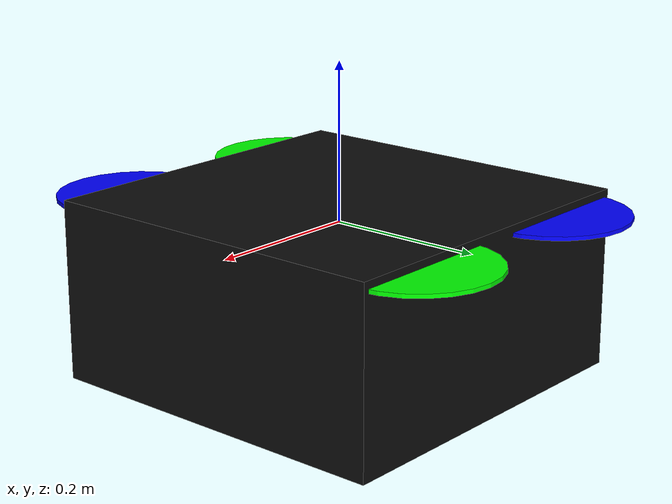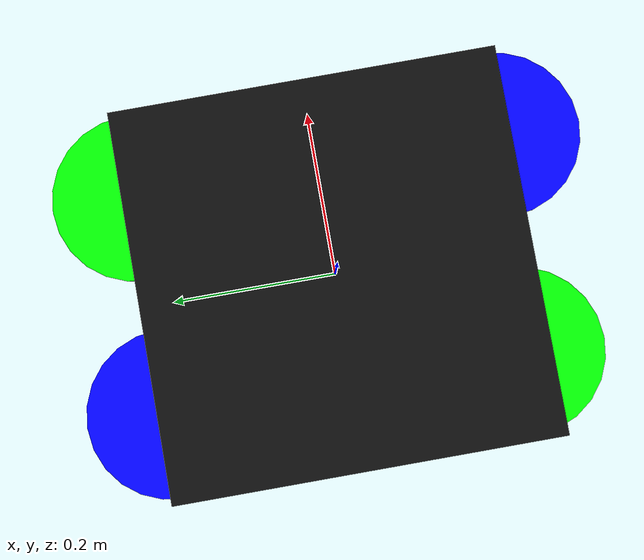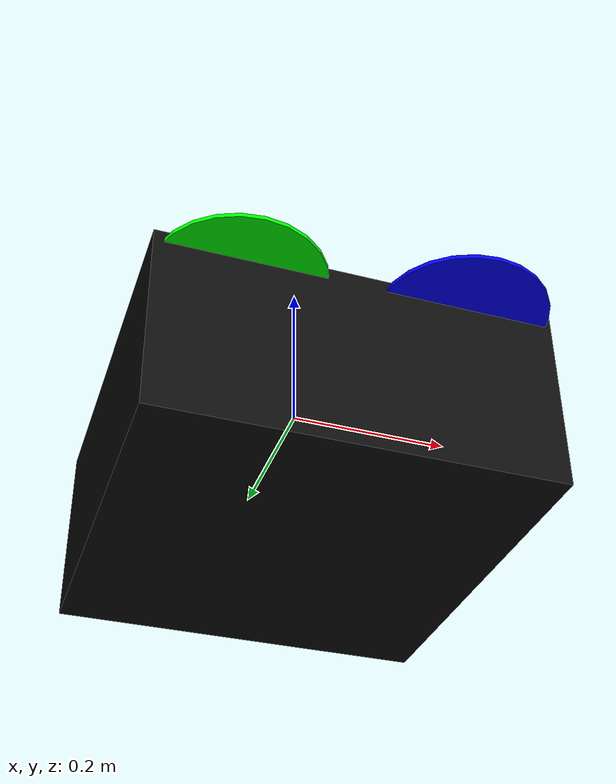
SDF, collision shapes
<?xml version='1.0'?>
<sdf version='1.9'>
  <model name='iris_with_standoffs'>
    <pose>0 0 0 0 0 0</pose>
    <link name='base_link'>
      <velocity_decay>
        <linear>0.0</linear>
        <angular>0.0</angular>
      </velocity_decay>
      <inertial>
        <pose>0 0 0 0 0 0</pose>
        <mass>1.5</mass>
        <inertia>
          <ixx>0.008</ixx>
          <ixy>0</ixy>
          <ixz>0</ixz>
          <iyy>0.015</iyy>
          <iyz>0</iyz>
          <izz>0.017</izz>
        </inertia>
      </inertial>
      <collision name='base_collision'>
        <pose>0 0 -0.08 0 0 0</pose>
        <geometry>
          <box>
            <size>0.47 0.47 0.23</size>
          </box>
        </geometry>
        <surface>
          <contact>
            <ode>
              <max_vel>100.0</max_vel>
              <min_depth>0.001</min_depth>
            </ode>
          </contact>
          <friction>
            <ode>
              <mu>100000.0</mu>
              <mu2>100000.0</mu2>
            </ode>
          </friction>
        </surface>
      </collision>
      <visual name='base_visual'>
        <geometry>
          <mesh>
            <uri>model://iris_with_standoffs/meshes/iris.dae</uri>
          </mesh>
        </geometry>
        <material>
          <ambient>0.05 0.05 0.05</ambient>
          <diffuse>0.05 0.05 0.05</diffuse>
          <specular>1 1 1 1</specular>
          <pbr>
            <metal>
              <metalness>0.5</metalness>
              <roughness>0.5</roughness>
            </metal>
          </pbr>
        </material>
      </visual>

      <visual name='front_left_leg_visual'>
        <pose>0.123 0.22 -0.11 0 0 0</pose>
        <geometry>
          <cylinder>
            <radius>0.005</radius>
            <length>0.17</length>
          </cylinder>
        </geometry>
        <material>
          <ambient>0.05 0.05 0.05</ambient>
          <diffuse>0.05 0.05 0.05</diffuse>
          <specular>0.01 0.01 0.01 1.0</specular>
          <pbr>
            <metal>
              <metalness>0.5</metalness>
              <roughness>0.5</roughness>
            </metal>
          </pbr>
        </material>
      </visual>
      <visual name='front_right_leg_visual'>
        <pose>0.123 -0.22 -0.11 0 0 0</pose>
        <geometry>
          <cylinder>
            <radius>0.005</radius>
            <length>0.17</length>
          </cylinder>
        </geometry>
        <material>
          <ambient>0.05 0.05 0.05</ambient>
          <diffuse>0.05 0.05 0.05</diffuse>
          <specular>0.01 0.01 0.01 1.0</specular>
          <pbr>
            <metal>
              <metalness>0.5</metalness>
              <roughness>0.5</roughness>
            </metal>
          </pbr>
        </material>
      </visual>
      <visual name='rear_left_leg_visual'>
        <pose>-0.140 0.21 -0.11 0 0 0</pose>
        <geometry>
          <cylinder>
            <radius>0.005</radius>
            <length>0.17</length>
          </cylinder>
        </geometry>
        <material>
          <ambient>0.05 0.05 0.05</ambient>
          <diffuse>0.05 0.05 0.05</diffuse>
          <specular>0.01 0.01 0.01 1.0</specular>
          <pbr>
            <metal>
              <metalness>0.5</metalness>
              <roughness>0.5</roughness>
            </metal>
          </pbr>
        </material>
      </visual>
      <visual name='rear_right_leg_visual'>
        <pose>-0.140 -0.21 -0.11 0 0 0</pose>
        <geometry>
          <cylinder>
            <radius>0.005</radius>
            <length>0.17</length>
          </cylinder>
        </geometry>
        <material>
          <ambient>0.05 0.05 0.05</ambient>
          <diffuse>0.05 0.05 0.05</diffuse>
          <specular>0.01 0.01 0.01 1.0</specular>
          <pbr>
            <metal>
              <metalness>0.5</metalness>
              <roughness>0.5</roughness>
            </metal>
          </pbr>
        </material>
	  </visual>
    </link>

    <!-- Mincopter elements -->
    <link name='compass_link'>
      <inertial>
        <pose>0 0 0 0 0 0</pose>
        <mass>0.15</mass>
        <inertia>
          <ixx>0.00001</ixx>
          <ixy>0</ixy>
          <ixz>0</ixz>
          <iyy>0.00002</iyy>
          <iyz>0</iyz>
          <izz>0.00002</izz>
        </inertia>
      </inertial>
      <sensor name="compass_sensor" type="magnetometer">
		  <pose degrees="true">0 0 0 0 0 0</pose>
        <always_on>1</always_on>
		<update_rate>1000.0</update_rate>
      </sensor>
    </link>

    <link name='barometer_link'>
      <inertial>
        <pose>0 0 0 0 0 0</pose>
        <mass>0.15</mass>
        <inertia>
          <ixx>0.00001</ixx>
          <ixy>0</ixy>
          <ixz>0</ixz>
          <iyy>0.00002</iyy>
          <iyz>0</iyz>
          <izz>0.00002</izz>
        </inertia>
      </inertial>
      <sensor name="baro_sensor" type="air_pressure">
        <pose degrees="true">0 0 0 0 0 0</pose>
        <always_on>1</always_on>
        <update_rate>1000.0</update_rate>
      </sensor>
    </link>

    <link name='imu_link'>
      <inertial>
        <pose>0 0 0 0 0 0</pose>
        <mass>0.15</mass>
        <inertia>
          <ixx>0.00001</ixx>
          <ixy>0</ixy>
          <ixz>0</ixz>
          <iyy>0.00002</iyy>
          <iyz>0</iyz>
          <izz>0.00002</izz>
        </inertia>
      </inertial>
	  <sensor name="imu_sensor" type="imu">
		<!-- pose here was formally 0 0 0 180 0 0 -->
        <pose degrees="true">0 0 0 0 0 0</pose>
        <always_on>1</always_on>
		<update_rate>1000.0</update_rate>
		<linear_acceleration>
			<x><noise type="gaussian"></noise></x>
			<y><noise type="gaussian"></noise></y>
			<z><noise type="gaussian"></noise></z>
		</linear_acceleration>

      </sensor>
  </link>

    <link name='navsat_link'>
      <inertial>
        <pose>0 0 0 0 0 0</pose>
        <mass>0.05</mass>
        <inertia>
          <ixx>0.00001</ixx>
          <ixy>0</ixy>
          <ixz>0</ixz>
          <iyy>0.00002</iyy>
          <iyz>0</iyz>
          <izz>0.00002</izz>
        </inertia>
      </inertial>
      <sensor name="navsat_sensor" type="navsat">
        <pose degrees="true">0 0 0 0 0 0</pose>
        <always_on>1</always_on>
        <update_rate>1000.0</update_rate>
      </sensor>
  </link>

    <joint name='navsat_joint' type='fixed'>
	<child>navsat_link</child>
	<parent>base_link</parent>
	<axis>
	    <xyz>0 0 1</xyz>
	    <limit>
		<lower>0</lower>
		<upper>0</upper>
	    </limit>
	</axis>
    </joint>

    <joint name='compass_joint' type='fixed'>
	<parent>base_link</parent>
	<child>compass_link</child>
	<axis>
	    <xyz>0 0 1</xyz>
	    <limit>
		<lower>0</lower>
		<upper>0</upper>
	    </limit>
	</axis>
    </joint>

    <joint name='baro_joint' type='fixed'>
	<child>barometer_link</child>
	<parent>base_link</parent>
	<axis>
	    <xyz>0 0 1</xyz>
	    <limit>
		<lower>0</lower>
		<upper>0</upper>
	    </limit>
	</axis>
    </joint>

    <joint name='imu_joint' type='fixed'>
      <child>imu_link</child>
      <parent>base_link</parent>
      <axis>
        <xyz>0 0 1</xyz>
        <limit>
          <lower>0</lower>
          <upper>0</upper>
          <effort>0</effort>
          <velocity>0</velocity>
        </limit>
        <dynamics>
          <damping>1.0</damping>
        </dynamics>
      </axis>
  </joint>

    <link name='rotor_0'>
      <pose>0.13 -0.22 0.023 0 0 0</pose>
      <inertial>
        <pose>0 0 0 0 0 0</pose>
        <mass>0.025</mass>
        <inertia>
          <ixx>9.75e-06</ixx>
          <ixy>0</ixy>
          <ixz>0</ixz>
          <iyy>0.000166704</iyy>
          <iyz>0</iyz>
          <izz>0.000167604</izz>
        </inertia>
      </inertial>
      <collision name='rotor_0_collision'>
        <pose>0 0 0 0 0 0</pose>
        <geometry>
          <cylinder>
            <length>0.005</length>
            <radius>0.1</radius>
          </cylinder>
        </geometry>
        <surface>
          <contact>
            <ode/>
          </contact>
          <friction>
            <ode/>
          </friction>
        </surface>
      </collision>
      <visual name='rotor_0_visual'>
        <pose>0 0 0 0 0 0</pose>
        <geometry>
          <mesh>
            <scale>1 1 1</scale>
            <uri>model://iris_with_standoffs/meshes/iris_prop_ccw.dae</uri>
          </mesh>
        </geometry>
        <material>
          <ambient>0 0 1</ambient>
          <diffuse>0 0 1</diffuse>
          <specular>1 1 1 1</specular>
          <pbr>
            <metal>
              <metalness>0.5</metalness>
              <roughness>0.5</roughness>
            </metal>
          </pbr>
        </material>
      </visual>
      <gravity>1</gravity>
      <velocity_decay/>
      <self_collide>0</self_collide>
    </link>
    <joint name='rotor_0_joint' type='revolute'>
      <child>rotor_0</child>
      <parent>base_link</parent>
      <axis>
        <xyz>0 0 1</xyz>
        <limit>
          <lower>-1e+16</lower>
          <upper>1e+16</upper>
        </limit>
        <dynamics>
          <damping>0.004</damping>
        </dynamics>
      </axis>
      <physics>
        <ode>
          <implicit_spring_damper>1</implicit_spring_damper>
        </ode>
      </physics>
    </joint>
    <link name='rotor_1'>
      <pose>-0.13 0.22 0.023 0 0 0</pose>
      <inertial>
        <pose>0 0 0 0 0 0</pose>
        <mass>0.025</mass>
        <inertia>
          <ixx>9.75e-06</ixx>
          <ixy>0</ixy>
          <ixz>0</ixz>
          <iyy>0.000166704</iyy>
          <iyz>0</iyz>
          <izz>0.000167604</izz>
        </inertia>
      </inertial>
      <collision name='rotor_1_collision'>
        <pose>0 0 0 0 0 0</pose>
        <geometry>
          <cylinder>
            <length>0.005</length>
            <radius>0.1</radius>
          </cylinder>
        </geometry>
        <surface>
          <contact>
            <ode/>
          </contact>
          <friction>
            <ode/>
          </friction>
        </surface>
      </collision>
      <visual name='rotor_1_visual'>
        <pose>0 0 0 0 0 0</pose>
        <geometry>
          <mesh>
            <scale>1 1 1</scale>
            <uri>model://iris_with_standoffs/meshes/iris_prop_ccw.dae</uri>
          </mesh>
        </geometry>
        <material>
          <ambient>0 0 1 1</ambient>
          <diffuse>0 0 1 1</diffuse>
          <specular>1 1 1 1</specular>
          <pbr>
            <metal>
              <metalness>0.5</metalness>
              <roughness>0.5</roughness>
            </metal>
          </pbr>
        </material>
      </visual>
      <gravity>1</gravity>
      <velocity_decay/>
      <self_collide>0</self_collide>
    </link>
    <joint name='rotor_1_joint' type='revolute'>
      <child>rotor_1</child>
      <parent>base_link</parent>
      <axis>
        <xyz>0 0 1</xyz>
        <limit>
          <lower>-1e+16</lower>
          <upper>1e+16</upper>
        </limit>
        <dynamics>
          <damping>0.004</damping>
        </dynamics>
      </axis>
      <physics>
        <ode>
          <implicit_spring_damper>1</implicit_spring_damper>
        </ode>
      </physics>
    </joint>
    <link name='rotor_2'>
      <pose>0.13 0.22 0.023 0 0 0</pose>
      <inertial>
        <pose>0 0 0 0 0 0</pose>
        <mass>0.025</mass>
        <inertia>
          <ixx>9.75e-06</ixx>
          <ixy>0</ixy>
          <ixz>0</ixz>
          <iyy>0.000166704</iyy>
          <iyz>0</iyz>
          <izz>0.000167604</izz>
        </inertia>
      </inertial>
      <collision name='rotor_2_collision'>
        <pose>0 0 0 0 0 0</pose>
        <geometry>
          <cylinder>
            <length>0.005</length>
            <radius>0.1</radius>
          </cylinder>
        </geometry>
        <surface>
          <contact>
            <ode/>
          </contact>
          <friction>
            <ode/>
          </friction>
        </surface>
      </collision>
      <visual name='rotor_2_visual'>
        <pose>0 0 0 0 0 0</pose>
        <geometry>
          <mesh>
            <scale>1 1 1</scale>
            <uri>model://iris_with_standoffs/meshes/iris_prop_cw.dae</uri>
          </mesh>
        </geometry>
        <material>
          <ambient>0 1 0</ambient>
          <diffuse>0 1 0</diffuse>
          <specular>1 1 1 1</specular>
          <pbr>
            <metal>
              <metalness>0.5</metalness>
              <roughness>0.5</roughness>
            </metal>
          </pbr>
        </material>
      </visual>
      <gravity>1</gravity>
      <velocity_decay/>
      <self_collide>0</self_collide>
    </link>
    <joint name='rotor_2_joint' type='revolute'>
      <child>rotor_2</child>
      <parent>base_link</parent>
      <axis>
        <xyz>0 0 1</xyz>
        <limit>
          <lower>-1e+16</lower>
          <upper>1e+16</upper>
        </limit>
        <dynamics>
          <damping>0.004</damping>
        </dynamics>
      </axis>
      <physics>
        <ode>
          <implicit_spring_damper>1</implicit_spring_damper>
        </ode>
      </physics>
    </joint>
    <link name='rotor_3'>
      <pose>-0.13 -0.2 0.023 0 0 0</pose>
      <inertial>
        <pose>0 0 0 0 0 0</pose>
        <mass>0.025</mass>
        <inertia>
          <ixx>9.75e-06</ixx>
          <ixy>0</ixy>
          <ixz>0</ixz>
          <iyy>0.000166704</iyy>
          <iyz>0</iyz>
          <izz>0.000167604</izz>
        </inertia>
      </inertial>
      <collision name='rotor_3_collision'>
        <pose>0 0 0 0 0 0</pose>
        <geometry>
          <cylinder>
            <length>0.005</length>
            <radius>0.1</radius>
          </cylinder>
        </geometry>
        <surface>
          <contact>
            <ode/>
          </contact>
          <friction>
            <ode/>
          </friction>
        </surface>
      </collision>
      <visual name='rotor_3_visual'>
        <pose>0 0 0 0 0 0</pose>
        <geometry>
          <mesh>
            <scale>1 1 1</scale>
            <uri>model://iris_with_standoffs/meshes/iris_prop_cw.dae</uri>
          </mesh>
        </geometry>
        <material>
          <ambient>0 1 0</ambient>
          <diffuse>0 1 0</diffuse>
          <specular>1 1 1 1</specular>
          <pbr>
            <metal>
              <metalness>0.5</metalness>
              <roughness>0.5</roughness>
            </metal>
          </pbr>
        </material>
      </visual>
      <gravity>1</gravity>
      <velocity_decay/>
      <self_collide>0</self_collide>
    </link>
    <joint name='rotor_3_joint' type='revolute'>
      <child>rotor_3</child>
      <parent>base_link</parent>
      <axis>
        <xyz>0 0 1</xyz>
        <limit>
          <lower>-1e+16</lower>
          <upper>1e+16</upper>
        </limit>
        <dynamics>
          <damping>0.004</damping>
        </dynamics>
      </axis>
      <physics>
        <ode>
          <implicit_spring_damper>1</implicit_spring_damper>
        </ode>
      </physics>
    </joint>
  </model>
</sdf>
